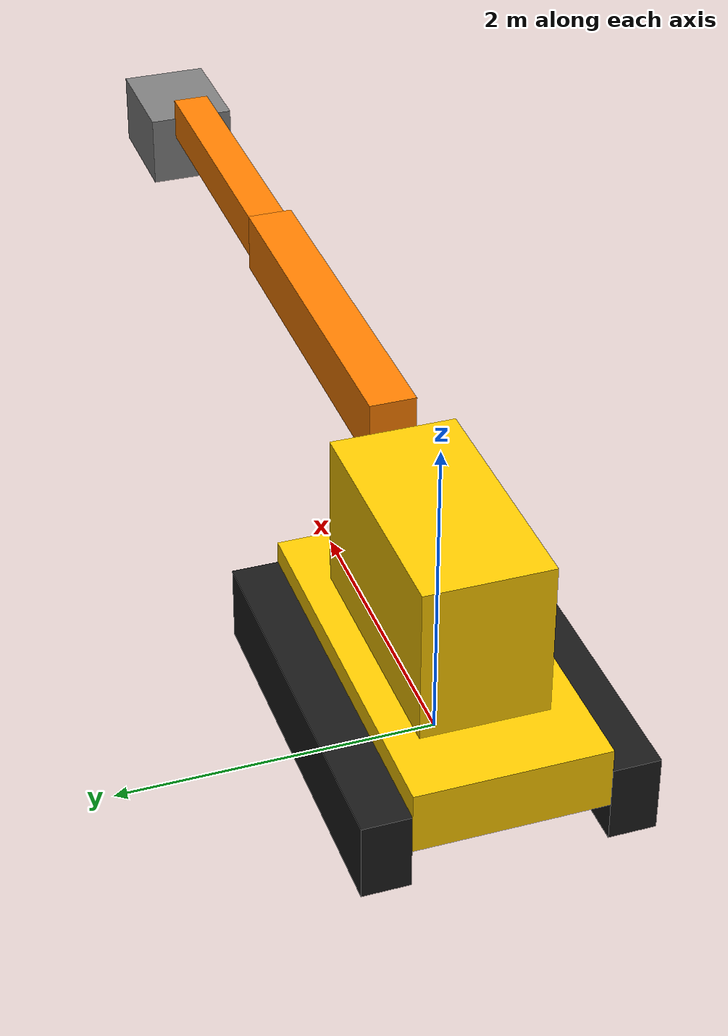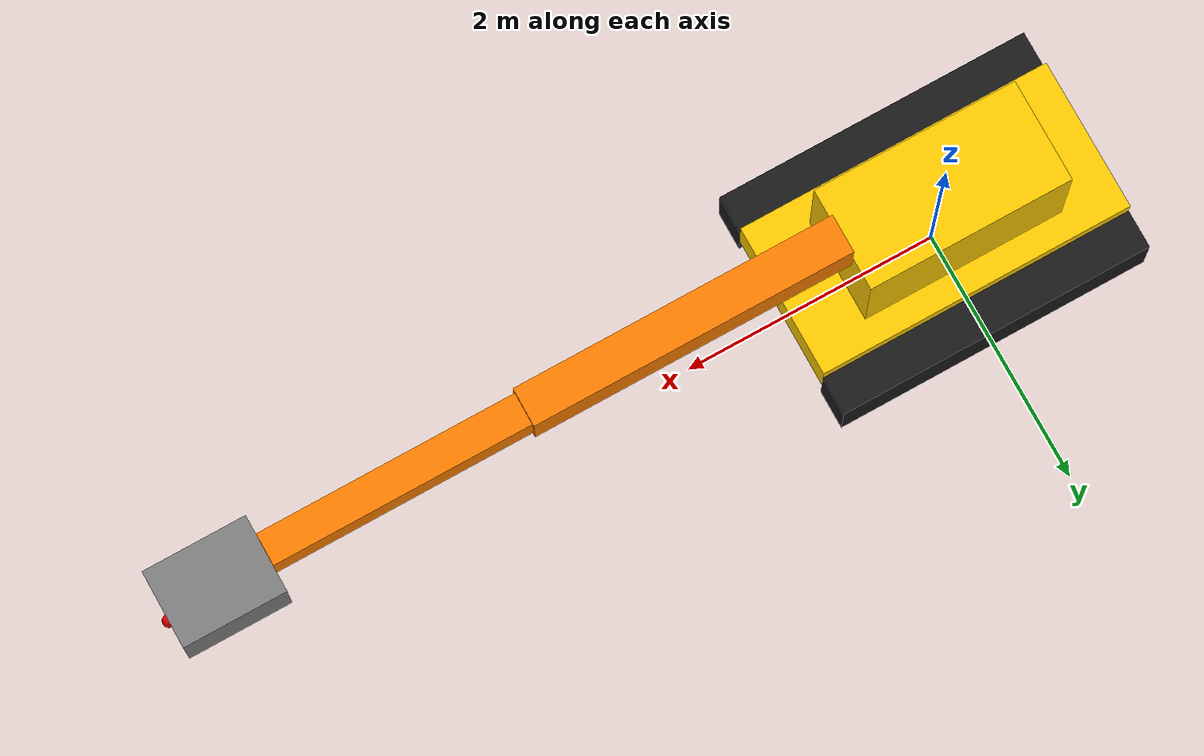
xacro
<?xml version="1.0"?>
<robot name="excavator" xmlns:xacro="http://www.ros.org/wiki/xacro">

  <!-- 参数定义 -->
  <xacro:property name="chassis_length" value="2.5"/>
  <xacro:property name="chassis_width" value="1.2"/>
  <xacro:property name="chassis_height" value="0.4"/>
  <xacro:property name="track_width" value="0.3"/>
  <xacro:property name="track_radius" value="0.25"/>

  <xacro:property name="cabin_length" value="1.6"/>
  <xacro:property name="cabin_width" value="0.8"/>
  <xacro:property name="cabin_height" value="1.0"/>

  <xacro:property name="boom_length" value="2.5"/>
  <xacro:property name="boom_width" value="0.3"/>
  <xacro:property name="boom_height" value="0.4"/>

  <xacro:property name="arm_length" value="2.0"/>
  <xacro:property name="arm_width" value="0.25"/>
  <xacro:property name="arm_height" value="0.3"/>

  <xacro:property name="bucket_length" value="0.8"/>
  <xacro:property name="bucket_width" value="0.6"/>
  <xacro:property name="bucket_height" value="0.5"/>

  <!-- 材质定义 -->
  <material name="yellow">
    <color rgba="1.0 0.8 0.0 1.0"/>
  </material>
  <material name="black">
    <color rgba="0.1 0.1 0.1 1.0"/>
  </material>
  <material name="gray">
    <color rgba="0.5 0.5 0.5 1.0"/>
  </material>
  <material name="orange">
    <color rgba="1.0 0.5 0.0 1.0"/>
  </material>

  <!-- 惯性宏 -->
  <xacro:macro name="box_inertia" params="m x y z">
    <inertia ixx="${m*(y*y+z*z)/12}" ixy="0" ixz="0"
             iyy="${m*(x*x+z*z)/12}" iyz="0"
             izz="${m*(x*x+y*y)/12}"/>
  </xacro:macro>

  <xacro:macro name="cylinder_inertia" params="m r l">
    <inertia ixx="${m*(3*r*r+l*l)/12}" ixy="0" ixz="0"
             iyy="${m*(3*r*r+l*l)/12}" iyz="0"
             izz="${m*r*r/2}"/>
  </xacro:macro>

  <!-- ========== 底盘 ========== -->
  <link name="base_footprint"/>

  <link name="chassis">
    <visual>
      <geometry>
        <box size="${chassis_length} ${chassis_width} ${chassis_height}"/>
      </geometry>
      <material name="yellow"/>
    </visual>
    <collision>
      <geometry>
        <box size="${chassis_length} ${chassis_width} ${chassis_height}"/>
      </geometry>
    </collision>
    <inertial>
      <mass value="8000"/>
      <xacro:box_inertia m="8000" x="${chassis_length}" y="${chassis_width}" z="${chassis_height}"/>
    </inertial>
  </link>

  <joint name="base_joint" type="fixed">
    <parent link="base_footprint"/>
    <child link="chassis"/>
    <origin xyz="0 0 ${track_radius + chassis_height/2}" rpy="0 0 0"/>
  </joint>

  <!-- 左履带 -->
  <link name="left_track">
    <visual>
      <geometry>
        <box size="${chassis_length} ${track_width} ${track_radius*2}"/>
      </geometry>
      <material name="black"/>
    </visual>
    <collision>
      <geometry>
        <box size="${chassis_length} ${track_width} ${track_radius*2}"/>
      </geometry>
    </collision>
    <inertial>
      <mass value="500"/>
      <xacro:box_inertia m="500" x="${chassis_length}" y="${track_width}" z="${track_radius*2}"/>
    </inertial>
  </link>

  <joint name="left_track_joint" type="fixed">
    <parent link="chassis"/>
    <child link="left_track"/>
    <origin xyz="0 ${chassis_width/2 + track_width/2} ${-chassis_height/2}" rpy="0 0 0"/>
  </joint>

  <!-- 右履带 -->
  <link name="right_track">
    <visual>
      <geometry>
        <box size="${chassis_length} ${track_width} ${track_radius*2}"/>
      </geometry>
      <material name="black"/>
    </visual>
    <collision>
      <geometry>
        <box size="${chassis_length} ${track_width} ${track_radius*2}"/>
      </geometry>
    </collision>
    <inertial>
      <mass value="500"/>
      <xacro:box_inertia m="500" x="${chassis_length}" y="${track_width}" z="${track_radius*2}"/>
    </inertial>
  </link>

  <joint name="right_track_joint" type="fixed">
    <parent link="chassis"/>
    <child link="right_track"/>
    <origin xyz="0 ${-chassis_width/2 - track_width/2} ${-chassis_height/2}" rpy="0 0 0"/>
  </joint>

  <!-- ========== 座舱回转平台 ========== -->
  <link name="turret">
    <visual>
      <origin xyz="0 0 ${cabin_height/2}"/>
      <geometry>
        <box size="${cabin_length} ${cabin_width} ${cabin_height}"/>
      </geometry>
      <material name="yellow"/>
    </visual>
    <collision>
      <origin xyz="0 0 ${cabin_height/2}"/>
      <geometry>
        <box size="${cabin_length} ${cabin_width} ${cabin_height}"/>
      </geometry>
    </collision>
    <inertial>
      <origin xyz="0 0 ${cabin_height/2}"/>
      <mass value="2000"/>
      <xacro:box_inertia m="2000" x="${cabin_length}" y="${cabin_width}" z="${cabin_height}"/>
    </inertial>
  </link>

  <joint name="swing_joint" type="continuous">
    <parent link="chassis"/>
    <child link="turret"/>
    <origin xyz="0 0 ${chassis_height/2}" rpy="0 0 0"/>
    <axis xyz="0 0 1"/>
    <dynamics damping="5.0" friction="1.0"/>
  </joint>

  <!-- ========== 大臂 (Boom) ========== -->
  <link name="boom">
    <visual>
      <origin xyz="${boom_length/2} 0 0"/>
      <geometry>
        <box size="${boom_length} ${boom_width} ${boom_height}"/>
      </geometry>
      <material name="orange"/>
    </visual>
    <collision>
      <origin xyz="${boom_length/2} 0 0"/>
      <geometry>
        <box size="${boom_length} ${boom_width} ${boom_height}"/>
      </geometry>
    </collision>
    <inertial>
      <origin xyz="${boom_length/2} 0 0"/>
      <mass value="800"/>
      <xacro:box_inertia m="800" x="${boom_length}" y="${boom_width}" z="${boom_height}"/>
    </inertial>
  </link>

  <joint name="boom_joint" type="revolute">
    <parent link="turret"/>
    <child link="boom"/>
    <origin xyz="${cabin_length/2} 0 ${cabin_height}" rpy="0 0 0"/>
    <axis xyz="0 1 0"/>
    <dynamics damping="100.0" friction="10.0"/>
    <limit lower="-2.0" upper="1.5" effort="1000000" velocity="0.5"/>
  </joint>

  <!-- ========== 小臂 (Arm/Stick) ========== -->
  <link name="arm">
    <visual>
      <origin xyz="${arm_length/2} 0 0"/>
      <geometry>
        <box size="${arm_length} ${arm_width} ${arm_height}"/>
      </geometry>
      <material name="orange"/>
    </visual>
    <collision>
      <origin xyz="${arm_length/2} 0 0"/>
      <geometry>
        <box size="${arm_length} ${arm_width} ${arm_height}"/>
      </geometry>
    </collision>
    <inertial>
      <origin xyz="${arm_length/2} 0 0"/>
      <mass value="400"/>
      <xacro:box_inertia m="400" x="${arm_length}" y="${arm_width}" z="${arm_height}"/>
    </inertial>
  </link>

  <joint name="arm_joint" type="revolute">
    <parent link="boom"/>
    <child link="arm"/>
    <origin xyz="${boom_length} 0 0" rpy="0 0 0"/>
    <axis xyz="0 1 0"/>
    <dynamics damping="100.0" friction="100.0"/>
    <limit lower="-2.8" upper="2.5" effort="30000" velocity="0.6"/>
  </joint>

  <!-- ========== 铲斗 (Bucket) ========== -->
  <link name="bucket">
    <visual>
      <origin xyz="${bucket_length/2} 0 ${-bucket_height/2}"/>
      <geometry>
        <box size="${bucket_length} ${bucket_width} ${bucket_height}"/>
      </geometry>
      <material name="gray"/>
    </visual>
    <collision>
      <origin xyz="${bucket_length/2} 0 ${-bucket_height/2}"/>
      <geometry>
        <box size="${bucket_length} ${bucket_width} ${bucket_height}"/>
      </geometry>
    </collision>
    <inertial>
      <origin xyz="${bucket_length/2} 0 ${-bucket_height/2}"/>
      <mass value="200"/>
      <xacro:box_inertia m="200" x="${bucket_length}" y="${bucket_width}" z="${bucket_height}"/>
    </inertial>
  </link>

  <joint name="bucket_joint" type="revolute">
    <parent link="arm"/>
    <child link="bucket"/>
    <origin xyz="${arm_length} 0 0" rpy="0 0 0"/>
    <axis xyz="0 1 0"/>
    <dynamics damping="50.0" friction="50.0"/>
    <limit lower="-3.14" upper="3.14" effort="15000" velocity="0.8"/>
  </joint>

  <!-- 铲斗末端（用于轨迹跟踪） -->
  <link name="bucket_tip">
    <visual>
      <geometry>
        <sphere radius="0.05"/>
      </geometry>
      <material name="red">
        <color rgba="1 0 0 1"/>
      </material>
    </visual>
    <inertial>
      <mass value="0.1"/>
      <inertia ixx="0.0001" ixy="0" ixz="0" iyy="0.0001" iyz="0" izz="0.0001"/>
    </inertial>
  </link>

  <joint name="bucket_tip_joint" type="fixed">
    <parent link="bucket"/>
    <child link="bucket_tip"/>
    <origin xyz="${bucket_length} 0 ${-bucket_height}" rpy="0 0 0"/>
  </joint>

  <!-- ========== Gazebo 插件 ========== -->
  <!-- 平面移动插件 -->
  <gazebo>
    <plugin name="planar_move_controller" filename="libgazebo_ros_planar_move.so">
      <commandTopic>/excavator/cmd_vel</commandTopic>
      <odometryTopic>odom</odometryTopic>
      <odometryFrame>odom</odometryFrame>
      <robotBaseFrame>base_footprint</robotBaseFrame>
      <odometryRate>50.0</odometryRate>
      <publishOdometryTf>true</publishOdometryTf>
    </plugin>
  </gazebo>

  <!-- ROS Control插件 -->
  <gazebo>
    <plugin name="gazebo_ros_control" filename="libgazebo_ros_control.so">
      <robotNamespace>/excavator</robotNamespace>
      <robotSimType>gazebo_ros_control/DefaultRobotHWSim</robotSimType>
      <legacyModeNS>true</legacyModeNS>
    </plugin>
  </gazebo>

  <!-- 关节传动装置 -->
  <transmission name="swing_trans">
    <type>transmission_interface/SimpleTransmission</type>
    <joint name="swing_joint">
      <hardwareInterface>hardware_interface/EffortJointInterface</hardwareInterface>
    </joint>
    <actuator name="swing_motor">
      <hardwareInterface>hardware_interface/EffortJointInterface</hardwareInterface>
      <mechanicalReduction>1</mechanicalReduction>
    </actuator>
  </transmission>

  <transmission name="boom_trans">
    <type>transmission_interface/SimpleTransmission</type>
    <joint name="boom_joint">
      <hardwareInterface>hardware_interface/EffortJointInterface</hardwareInterface>
    </joint>
    <actuator name="boom_motor">
      <hardwareInterface>hardware_interface/EffortJointInterface</hardwareInterface>
      <mechanicalReduction>1</mechanicalReduction>
    </actuator>
  </transmission>

  <transmission name="arm_trans">
    <type>transmission_interface/SimpleTransmission</type>
    <joint name="arm_joint">
      <hardwareInterface>hardware_interface/EffortJointInterface</hardwareInterface>
    </joint>
    <actuator name="arm_motor">
      <hardwareInterface>hardware_interface/EffortJointInterface</hardwareInterface>
      <mechanicalReduction>1</mechanicalReduction>
    </actuator>
  </transmission>

  <transmission name="bucket_trans">
    <type>transmission_interface/SimpleTransmission</type>
    <joint name="bucket_joint">
      <hardwareInterface>hardware_interface/EffortJointInterface</hardwareInterface>
    </joint>
    <actuator name="bucket_motor">
      <hardwareInterface>hardware_interface/EffortJointInterface</hardwareInterface>
      <mechanicalReduction>1</mechanicalReduction>
    </actuator>
  </transmission>

  <!-- Gazebo材质 -->
  <gazebo reference="chassis">
    <material>Gazebo/Yellow</material>
  </gazebo>
  <gazebo reference="left_track">
    <material>Gazebo/Black</material>
    <mu1>1.5</mu1>
    <mu2>1.5</mu2>
  </gazebo>
  <gazebo reference="right_track">
    <material>Gazebo/Black</material>
    <mu1>1.5</mu1>
    <mu2>1.5</mu2>
  </gazebo>
  <gazebo reference="turret">
    <material>Gazebo/Yellow</material>
  </gazebo>
  <gazebo reference="boom">
    <material>Gazebo/Orange</material>
  </gazebo>
  <gazebo reference="arm">
    <material>Gazebo/Orange</material>
  </gazebo>
  <gazebo reference="bucket">
    <material>Gazebo/Grey</material>
  </gazebo>
  <gazebo reference="bucket_tip">
    <material>Gazebo/Red</material>
  </gazebo>
</robot>
